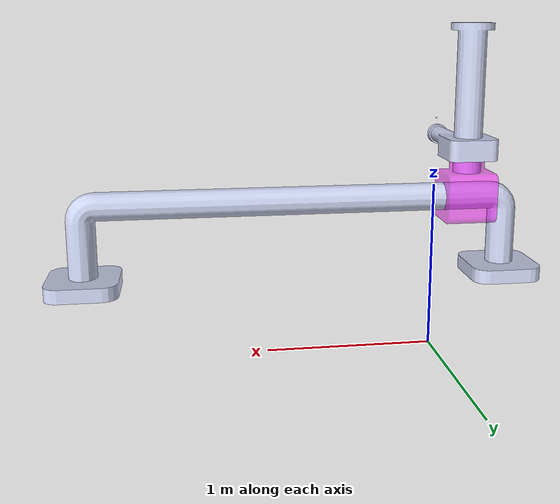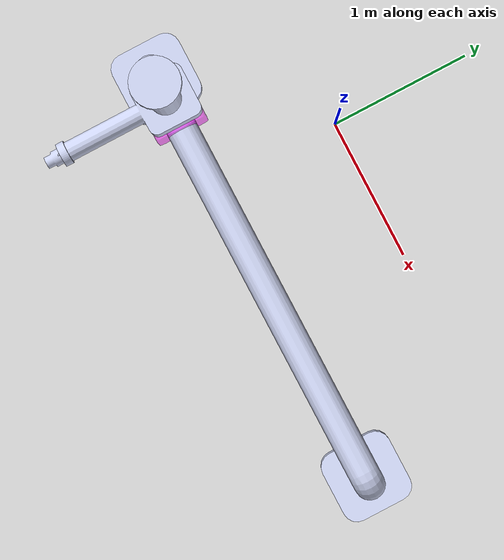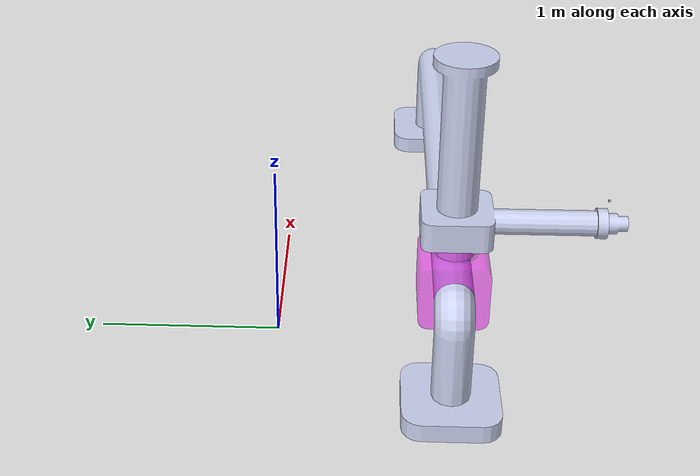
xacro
<?xml version="1.0" ?>
<robot
  name="pharmacy_robot" xmlns:xacro="http://ros.org/wiki/xacro">

  <link
    name="base_link">
    <inertial>
      <origin
        xyz="0.686728203631121 -0.924762250922737 0.509831812480349"
        rpy="0 0 0" />
      <mass
        value="171.2501252375" />
      <inertia
        ixx="11.8814708114873"
        ixy="9.54097911787248E-15"
        ixz="1.06490545656199E-13"
        iyy="255.922820152329"
        iyz="1.62629094629177E-15"
        izz="246.560343305852" />
    </inertial>
    <visual>
      <origin
        xyz="0 0 0"
        rpy="0 0 0" />
      <geometry>
        <mesh
          filename="package://pharmacy_robot/meshes/base_link.STL" />
      </geometry>
      <material
        name="">
        <color
          rgba="0.792156862745098 0.819607843137255 0.933333333333333 1" />
      </material>
    </visual>
    <collision>
      <origin
        xyz="0 0 0"
        rpy="0 0 0" />
      <geometry>
        <mesh
          filename="package://pharmacy_robot/meshes/base_link.STL" />
      </geometry>
    </collision>
  </link>
  <link
    name="robot_base_link">
    <inertial>
      <origin
        xyz="-0.175 0 0.0120870101207896"
        rpy="0 0 0" />
      <mass
        value="32.8954651519711" />
      <inertia
        ixx="0.877383355888658"
        ixy="-2.18203315235437E-17"
        ixz="1.28965762736164E-17"
        iyy="0.805184572091842"
        iyz="1.70815903992875E-17"
        izz="0.730376858947681" />
    </inertial>
    <visual>
      <origin
        xyz="0 0 0"
        rpy="0 0 0" />
      <geometry>
        <mesh
          filename="package://pharmacy_robot/meshes/robot_base_link.STL" />
      </geometry>
      <material
        name="">
        <color
          rgba="1 0 1 0.5" />
      </material>
    </visual>
    <collision>
      <origin
        xyz="0 0 0"
        rpy="0 0 0" />
      <geometry>
        <mesh
          filename="package://pharmacy_robot/meshes/robot_base_link.STL" />
      </geometry>
    </collision>
  </link>
  <joint name="robot_base" type="prismatic">
  <origin xyz="-0.363268813043527 -0.924762250922737 0.710106916026756" rpy="0 0 0" />
  <parent link="base_link" />
  <child link="robot_base_link" />
  <axis xyz="1 0 0" />
  <limit lower="0" upper="2.4" effort="1000" velocity="1" />
  <dynamics damping="5" friction="3" />
</joint>
<!-- Add transmission for prismatic_base joint -->
  <transmission name="prismatic_base_trans">
    <type>transmission_interface/SimpleTransmission</type>
    <joint name="prismatic_base">
      <hardwareInterface>PositionJointInterface</hardwareInterface>
    </joint>
    <actuator name="prismatic_base_motor">
      <hardwareInterface>PositionJointInterface</hardwareInterface>
      <mechanicalReduction>1</mechanicalReduction>
    </actuator>
  </transmission>
  <link
    name="vertical_rail_link">
    <inertial>
      <origin
        xyz="3.33066907387547E-16 2.22044604925031E-16 0.453089887640449"
        rpy="0 0 0" />
      <mass
        value="34.9502182711865" />
      <inertia
        ixx="3.59278110132393"
        ixy="-3.3033799663625E-17"
        ixz="-5.90617627192506E-16"
        iyy="3.59278110132393"
        iyz="-1.88243602498197E-16"
        izz="0.196840414701486" />
    </inertial>
    <visual>
      <origin
        xyz="0 0 0"
        rpy="0 0 0" />
      <geometry>
        <mesh
          filename="package://pharmacy_robot/meshes/vertical_rail_link.STL" />
      </geometry>
      <material
        name="">
        <color
          rgba="0.792156862745098 0.819607843137255 0.933333333333333 1" />
      </material>
    </visual>
    <collision>
      <origin
        xyz="0 0 0"
        rpy="0 0 0" />
      <geometry>
        <mesh
          filename="package://pharmacy_robot/meshes/vertical_rail_link.STL" />
      </geometry>
    </collision>
  </link>
  <joint
    name="vertical_rail"
    type="revolute">
    <origin
      xyz="-0.175 0 0.275"
      rpy="0 0 0" />
    <parent
      link="robot_base_link" />
    <child
      link="vertical_rail_link" />
    <axis
      xyz="0 0 1" />
    <limit
      lower="-3.14"
      upper="1.57"
      effort="10"
      velocity="0.5" />
      <dynamics damping="5" friction="3" />
  </joint>
  <link
    name="prismatic_base_link">
    <inertial>
      <origin
        xyz="1.58935575927943E-05 -0.0603741420043145 -0.101948634564318"
        rpy="0 0 0" />
      <mass
        value="15.5496405992668" />
      <inertia
        ixx="0.584009084266603"
        ixy="0.000101296652938908"
        ixz="2.70619018889306E-17"
        iyy="0.19921807382876"
        iyz="6.548462464122E-17"
        izz="0.726124015718573" />
    </inertial>
    <visual>
      <origin
        xyz="0 0 0"
        rpy="0 0 0" />
      <geometry>
        <mesh
          filename="package://pharmacy_robot/meshes/prismatic_base_link.STL" />
      </geometry>
      <material
        name="">
        <color
          rgba="0.792156862745098 0.819607843137255 0.933333333333333 1" />
      </material>
    </visual>
    <collision>
      <origin
        xyz="0 0 0"
        rpy="0 0 0" />
      <geometry>
        <mesh
          filename="package://pharmacy_robot/meshes/prismatic_base_link.STL" />
      </geometry>
    </collision>
  </link>
  <joint
    name="prismatic_base"
    type="prismatic">
    <origin
      xyz="0 0 0.176991225326261"
      rpy="0 0 0" />
    <parent
      link="vertical_rail_link" />
    <child
      link="prismatic_base_link" />
    <axis
      xyz="0 0 1" />
    <limit
      lower="0"
      upper="0.75"
      effort="10"
      velocity="1" />
      <dynamics damping="5" friction="3" />
  </joint>

  <link
    name="prismatic_arm_link">
    <inertial>
      <origin
        xyz="-5.44506258888244E-05 0.213445261051095 0.00238509040996626"
        rpy="0 0 0" />
      <mass
        value="4.52901617120805" />
      <inertia
        ixx="0.086265620179149"
        ixy="2.06560032908264E-05"
        ixz="-6.23561867229785E-07"
        iyy="0.00780059544949018"
        iyz="-1.64153289066334E-10"
        izz="0.0854104256669718" />
    </inertial>
    <visual>
      <origin
        xyz="0 0 0"
        rpy="0 0 0" />
      <geometry>
        <mesh
          filename="package://pharmacy_robot/meshes/prismatic_arm_link.STL" />
      </geometry>
      <material
        name="">
        <color
          rgba="0.792156862745098 0.819607843137255 0.933333333333333 1" />
      </material>
    </visual>
    <collision>
      <origin
        xyz="0 0 0"
        rpy="0 0 0" />
      <geometry>
        <mesh
          filename="package://pharmacy_robot/meshes/prismatic_arm_link.STL" />
      </geometry>
    </collision>
  </link>
  <joint
    name="prismatic_arm"
    type="prismatic">
    <origin
      xyz="0.000177712539755515 -0.675068627586491 -0.101948634564323"
      rpy="0 0 0" />
    <parent
      link="prismatic_base_link" />
    <child
      link="prismatic_arm_link" />
    <axis
      xyz="0.000263251062684053 -0.999999965349439 0" />
    <limit
      lower="0"
      upper="0.5"
      effort="10"
      velocity="0.1" />
      <dynamics damping="5" friction="3" />
  </joint>
  <link
    name="gripper_base_link">
    <inertial>
      <origin
        xyz="-2.19910948704438E-05 0.0835365824712644 0"
        rpy="0 0 0" />
      <mass
        value="1.00629139685298" />
      <inertia
        ixx="0.00223882461755945"
        ixy="2.90039858508858E-07"
        ixz="1.40341745262142E-20"
        iyy="0.00113706333537354"
        iyz="-3.71347206167E-20"
        izz="0.00223882469391275" />
    </inertial>
    <visual>
      <origin
        xyz="0 0 0"
        rpy="0 0 0" />
      <geometry>
        <mesh
          filename="package://pharmacy_robot/meshes/gripper_base_link.STL" />
      </geometry>
      <material
        name="">
        <color
          rgba="0.792156862745098 0.819607843137255 0.933333333333333 1" />
      </material>
    </visual>
    <collision>
      <origin
        xyz="0 0 0"
        rpy="0 0 0" />
      <geometry>
        <mesh
          filename="package://pharmacy_robot/meshes/gripper_base_link.STL" />
      </geometry>
    </collision>
  </link>
  <joint
    name="gripper_base"
    type="revolute">
    <origin
      xyz="3.9488E-05 -0.15 0"
      rpy="0 0 0" />
    <parent
      link="prismatic_arm_link" />
    <child
      link="gripper_base_link" />
    <axis
      xyz="0.00026325 -1 0" />
    <limit
      lower="0"
      upper="1.57"
      effort="10"
      velocity="0.5" />
      <dynamics damping="5" friction="3" />
  </joint>
  <!-- Add transmission for gripper_base joint -->
  <transmission name="gripper_base_trans">
    <type>transmission_interface/SimpleTransmission</type>
    <joint name="gripper_base">
      <hardwareInterface>PositionJointInterface</hardwareInterface>
    </joint>
    <actuator name="gripper_base_motor">
      <hardwareInterface>PositionJointInterface</hardwareInterface>
      <mechanicalReduction>1</mechanicalReduction>
    </actuator>
  </transmission>
  <link
    name="camera_link">
    <inertial>
      <origin
        xyz="-0.00618591449909045 0.00500000000000034 0.0174999999999998"
        rpy="0 0 0" />
      <mass
        value="0.01225" />
      <inertia
        ixx="1.35260416666667E-06"
        ixy="-6.79347927453316E-22"
        ixz="1.27881798521391E-21"
        iyy="2.50104166666666E-06"
        iyz="6.09823053655968E-23"
        izz="1.35260416666666E-06" />
    </inertial>
    <visual>
      <origin
        xyz="0 0 0"
        rpy="0 0 0" />
      <geometry>
        <mesh
          filename="package://pharmacy_robot/meshes/camera_link.STL" />
      </geometry>
      <material
        name="">
        <color
          rgba="0.792156862745098 0.819607843137255 0.933333333333333 1" />
      </material>
    </visual>
    <collision>
      <origin
        xyz="0 0 0"
        rpy="0 0 0" />
      <geometry>
        <mesh
          filename="package://pharmacy_robot/meshes/camera_link.STL" />
      </geometry>
    </collision>
  </link>
  <joint
    name="camera"
    type="fixed">
    <origin
      xyz="0 -0.05 0.12066"
      rpy="3.1416 3.1416 1.57" />
    <parent
      link="prismatic_arm_link" />
    <child
      link="camera_link" />
    <axis
      xyz="0 0 0" />
  </joint>

  <!-- camera -->
  <gazebo reference="camera_link">
    <sensor type="depth" name="camera">
      <update_rate>30.0</update_rate>
      <camera name="head">
        <horizontal_fov>1.3962634</horizontal_fov>
        <image>
          <width>800</width>
          <height>800</height>
          <format>R8G8B8</format>
        </image>
        <clip>
          <near>0.02</near>
          <far>300</far>
        </clip>
      </camera>
      <plugin name="camera_controller" filename="libgazebo_ros_camera.so">
        <alwaysOn>true</alwaysOn>
        <updateRate>0.0</updateRate>
        <cameraName>my_robot/camera</cameraName>
        <imageTopicName>image_raw</imageTopicName>
        <cameraInfoTopicName>camera_info</cameraInfoTopicName>
        <frameName>camera_link</frameName>
        <hackBaseline>0.07</hackBaseline>
        <distortionK1>0.0</distortionK1>
        <distortionK2>0.0</distortionK2>
        <distortionK3>0.0</distortionK3>
        <distortionT1>0.0</distortionT1>
        <distortionT2>0.0</distortionT2>
      </plugin>
    </sensor>
  </gazebo>

  <!-- Gazebo plugin -->
  <gazebo>
    <plugin name="gazebo_ros_control" filename="libgazebo_ros_control.so"/>
  </gazebo>

</robot>
